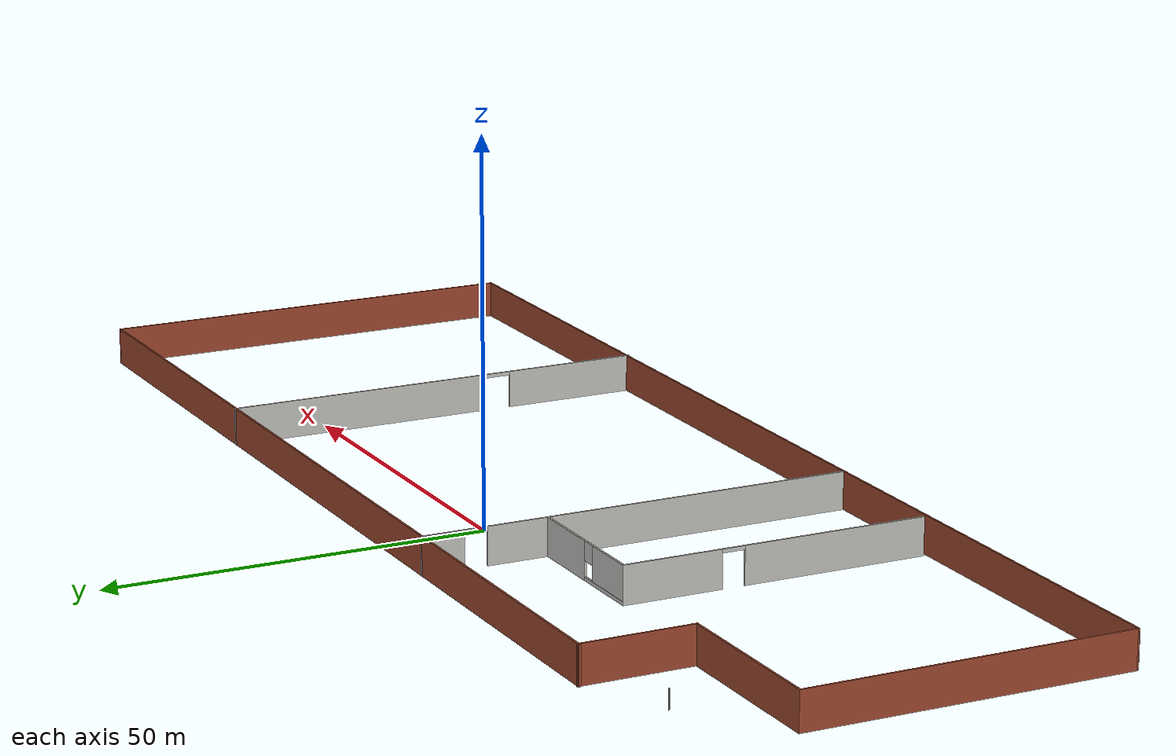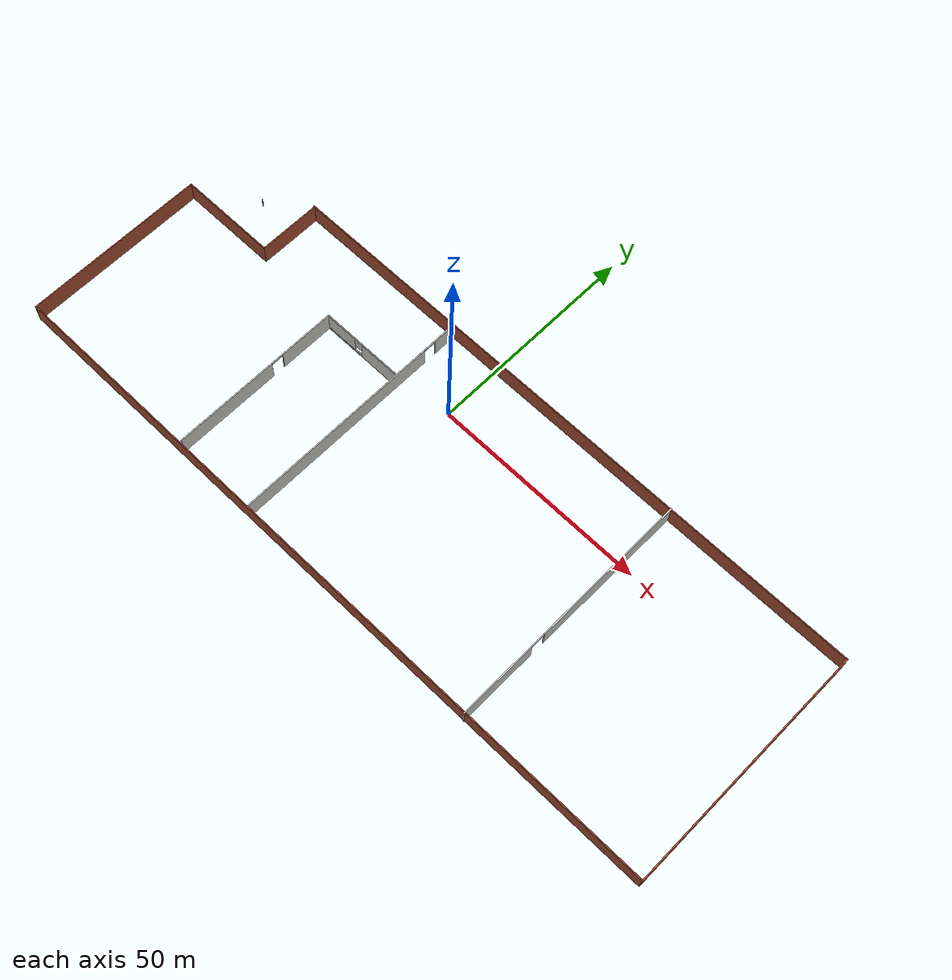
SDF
<?xml version='1.0'?>
<sdf version='1.6'>
  <model name='structure'>
    <pose frame=''>7.15554 -15.125 0 0 -0 0</pose>
    <link name='Wall_15'>
      <collision name='Wall_15_Collision'>
        <geometry>
          <box>
            <size>0.16 0.15 2.5</size>
          </box>
        </geometry>
        <pose frame=''>0 0 1.25 0 -0 0</pose>
      </collision>
      <visual name='Wall_15_Visual'>
        <pose frame=''>0 0 1.25 0 -0 0</pose>
        <geometry>
          <box>
            <size>0.16 0.15 2.5</size>
          </box>
        </geometry>
        <material>
          <script>
            <uri>file://media/materials/scripts/gazebo.material</uri>
            <name>Gazebo/Grey</name>
          </script>
          <ambient>1 1 1 1</ambient>
        </material>
        <meta>
          <layer>0</layer>
        </meta>
      </visual>
      <pose frame=''>-71.5276 23.2908 0 0 -0 0</pose>
    </link>
    <link name='Wall_17'>
      <collision name='Wall_17_Collision'>
        <geometry>
          <box>
            <size>144.984 0.25 5</size>
          </box>
        </geometry>
        <pose frame=''>0 0 2.5 0 -0 0</pose>
      </collision>
      <visual name='Wall_17_Visual'>
        <pose frame=''>0 0 2.5 0 -0 0</pose>
        <geometry>
          <box>
            <size>144.984 0.25 5</size>
          </box>
        </geometry>
        <material>
          <script>
            <uri>file://media/materials/scripts/gazebo.material</uri>
            <name>Gazebo/Bricks</name>
          </script>
          <ambient>0.921569 0.807843 0.615686 1</ambient>
        </material>
        <meta>
          <layer>0</layer>
        </meta>
      </visual>
      <pose frame=''>11.4248 28.9339 0 0 -0 0.0013</pose>
    </link>
    <link name='Wall_20'>
      <collision name='Wall_20_Collision'>
        <geometry>
          <box>
            <size>58.0999 0.25 5</size>
          </box>
        </geometry>
        <pose frame=''>0 0 2.5 0 -0 0</pose>
      </collision>
      <visual name='Wall_20_Visual'>
        <pose frame=''>0 0 2.5 0 -0 0</pose>
        <geometry>
          <box>
            <size>58.0999 0.25 5</size>
          </box>
        </geometry>
        <material>
          <script>
            <uri>file://media/materials/scripts/gazebo.material</uri>
            <name>Gazebo/Bricks</name>
          </script>
          <ambient>1 1 1 1</ambient>
        </material>
        <meta>
          <layer>0</layer>
        </meta>
      </visual>
      <pose frame=''>83.7915 0.103 0 0 0 -1.5708</pose>
    </link>
    <link name='Wall_21'>
      <collision name='Wall_21_Collision'>
        <geometry>
          <box>
            <size>167.833 0.25 5</size>
          </box>
        </geometry>
        <pose frame=''>0 0 2.5 0 -0 0</pose>
      </collision>
      <visual name='Wall_21_Visual'>
        <pose frame=''>0 0 2.5 0 -0 0</pose>
        <geometry>
          <box>
            <size>167.833 0.25 5</size>
          </box>
        </geometry>
        <material>
          <script>
            <uri>file://media/materials/scripts/gazebo.material</uri>
            <name>Gazebo/Bricks</name>
          </script>
          <ambient>0.760784 0.662745 0.627451 1</ambient>
        </material>
        <meta>
          <layer>0</layer>
        </meta>
      </visual>
      <pose frame=''>-4.4e-05 -28.916 0 0 0 -3.14047</pose>
    </link>
    <link name='Wall_22'>
      <collision name='Wall_22_Collision'>
        <geometry>
          <box>
            <size>43.3499 0.25 5</size>
          </box>
        </geometry>
        <pose frame=''>0 0 2.5 0 -0 0</pose>
      </collision>
      <visual name='Wall_22_Visual'>
        <pose frame=''>0 0 2.5 0 -0 0</pose>
        <geometry>
          <box>
            <size>43.3499 0.25 5</size>
          </box>
        </geometry>
        <material>
          <script>
            <uri>file://media/materials/scripts/gazebo.material</uri>
            <name>Gazebo/Bricks</name>
          </script>
          <ambient>1 1 1 1</ambient>
        </material>
        <meta>
          <layer>0</layer>
        </meta>
      </visual>
      <pose frame=''>-83.7915 -7.46 0 0 -0 1.5708</pose>
    </link>
    <link name='Wall_23'>
      <collision name='Wall_23_Collision'>
        <geometry>
          <box>
            <size>23.35 0.25 5</size>
          </box>
        </geometry>
        <pose frame=''>0 0 2.5 0 -0 0</pose>
      </collision>
      <visual name='Wall_23_Visual'>
        <pose frame=''>0 0 2.5 0 -0 0</pose>
        <geometry>
          <box>
            <size>23.35 0.25 5</size>
          </box>
        </geometry>
        <material>
          <script>
            <uri>file://media/materials/scripts/gazebo.material</uri>
            <name>Gazebo/Bricks</name>
          </script>
          <ambient>1 1 1 1</ambient>
        </material>
        <meta>
          <layer>0</layer>
        </meta>
      </visual>
      <pose frame=''>-72.2415 14.09 0 0 -0 0</pose>
    </link>
    <link name='Wall_24'>
      <collision name='Wall_24_Collision'>
        <geometry>
          <box>
            <size>15.0999 0.25 5</size>
          </box>
        </geometry>
        <pose frame=''>0 0 2.5 0 -0 0</pose>
      </collision>
      <visual name='Wall_24_Visual'>
        <pose frame=''>0 0 2.5 0 -0 0</pose>
        <geometry>
          <box>
            <size>15.0999 0.25 5</size>
          </box>
        </geometry>
        <material>
          <script>
            <uri>file://media/materials/scripts/gazebo.material</uri>
            <name>Gazebo/Bricks</name>
          </script>
          <ambient>1 1 1 1</ambient>
        </material>
        <meta>
          <layer>0</layer>
        </meta>
      </visual>
      <pose frame=''>-60.6915 21.515 0 0 -0 1.5708</pose>
    </link>
    <link name='Wall_27'>
      <pose frame=''>-19.2795 0.13 0 0 -0 1.5708</pose>
      <visual name='Wall_27_Visual_0'>
        <pose frame=''>-4.33599 0 2.5 0 -0 0</pose>
        <geometry>
          <box>
            <size>49.1778 0.25 5</size>
          </box>
        </geometry>
        <material>
          <script>
            <uri>file://media/materials/scripts/gazebo.material</uri>
            <name>Gazebo/CeilingTiled</name>
          </script>
          <ambient>1 1 1 1</ambient>
        </material>
        <meta>
          <layer>0</layer>
        </meta>
      </visual>
      <collision name='Wall_27_Collision_0'>
        <geometry>
          <box>
            <size>49.1778 0.25 5</size>
          </box>
        </geometry>
        <pose frame=''>-4.33599 0 2.5 0 -0 0</pose>
      </collision>
      <visual name='Wall_27_Visual_1'>
        <pose frame=''>26.0889 0 2.5 0 -0 0</pose>
        <geometry>
          <box>
            <size>5.67198 0.25 5</size>
          </box>
        </geometry>
        <material>
          <script>
            <uri>file://media/materials/scripts/gazebo.material</uri>
            <name>Gazebo/CeilingTiled</name>
          </script>
          <ambient>1 1 1 1</ambient>
        </material>
        <meta>
          <layer>0</layer>
        </meta>
      </visual>
      <collision name='Wall_27_Collision_1'>
        <geometry>
          <box>
            <size>5.67198 0.25 5</size>
          </box>
        </geometry>
        <pose frame=''>26.0889 0 2.5 0 -0 0</pose>
      </collision>
      <visual name='Wall_27_Visual_2'>
        <pose frame=''>21.7529 0 4.75 0 -0 0</pose>
        <geometry>
          <box>
            <size>3 0.25 0.5</size>
          </box>
        </geometry>
        <material>
          <script>
            <uri>file://media/materials/scripts/gazebo.material</uri>
            <name>Gazebo/CeilingTiled</name>
          </script>
          <ambient>1 1 1 1</ambient>
        </material>
        <meta>
          <layer>0</layer>
        </meta>
      </visual>
      <collision name='Wall_27_Collision_2'>
        <geometry>
          <box>
            <size>3 0.25 0.5</size>
          </box>
        </geometry>
        <pose frame=''>21.7529 0 4.75 0 -0 0</pose>
      </collision>
    </link>
    <link name='Wall_30'>
      <pose frame=''>-29.2825 12.267 0 0 -0 3.14159</pose>
      <visual name='Wall_30_Visual_0'>
        <pose frame=''>-5.01045 0 2.5 0 -0 0</pose>
        <geometry>
          <box>
            <size>10.0787 0.25 5</size>
          </box>
        </geometry>
        <material>
          <script>
            <uri>file://media/materials/scripts/gazebo.material</uri>
            <name>Gazebo/CeilingTiled</name>
          </script>
          <ambient>0.996078 0.47451 0.0196078 1</ambient>
        </material>
        <meta>
          <layer>0</layer>
        </meta>
      </visual>
      <collision name='Wall_30_Collision_0'>
        <geometry>
          <box>
            <size>10.0787 0.25 5</size>
          </box>
        </geometry>
        <pose frame=''>-5.01045 0 2.5 0 -0 0</pose>
      </collision>
      <visual name='Wall_30_Visual_1'>
        <pose frame=''>5.03936 0 0.25 0 -0 0</pose>
        <geometry>
          <box>
            <size>10.0209 0.25 0.5</size>
          </box>
        </geometry>
        <material>
          <script>
            <uri>file://media/materials/scripts/gazebo.material</uri>
            <name>Gazebo/CeilingTiled</name>
          </script>
          <ambient>0.996078 0.47451 0.0196078 1</ambient>
        </material>
        <meta>
          <layer>0</layer>
        </meta>
      </visual>
      <collision name='Wall_30_Collision_1'>
        <geometry>
          <box>
            <size>10.0209 0.25 0.5</size>
          </box>
        </geometry>
        <pose frame=''>5.03936 0 0.25 0 -0 0</pose>
      </collision>
      <visual name='Wall_30_Visual_2'>
        <pose frame=''>6.03936 0 2.75 0 -0 0</pose>
        <geometry>
          <box>
            <size>8.0209 0.25 4.5</size>
          </box>
        </geometry>
        <material>
          <script>
            <uri>file://media/materials/scripts/gazebo.material</uri>
            <name>Gazebo/CeilingTiled</name>
          </script>
          <ambient>0.996078 0.47451 0.0196078 1</ambient>
        </material>
        <meta>
          <layer>0</layer>
        </meta>
      </visual>
      <collision name='Wall_30_Collision_2'>
        <geometry>
          <box>
            <size>8.0209 0.25 4.5</size>
          </box>
        </geometry>
        <pose frame=''>6.03936 0 2.75 0 -0 0</pose>
      </collision>
      <visual name='Wall_30_Visual_3'>
        <pose frame=''>1.02891 0 3.75 0 -0 0</pose>
        <geometry>
          <box>
            <size>2 0.25 2.5</size>
          </box>
        </geometry>
        <material>
          <script>
            <uri>file://media/materials/scripts/gazebo.material</uri>
            <name>Gazebo/CeilingTiled</name>
          </script>
          <ambient>0.996078 0.47451 0.0196078 1</ambient>
        </material>
        <meta>
          <layer>0</layer>
        </meta>
      </visual>
      <collision name='Wall_30_Collision_3'>
        <geometry>
          <box>
            <size>2 0.25 2.5</size>
          </box>
        </geometry>
        <pose frame=''>1.02891 0 3.75 0 -0 0</pose>
      </collision>
    </link>
    <link name='Wall_31'>
      <pose frame=''>-39.2075 -8.033 0 0 0 -1.5708</pose>
      <visual name='Wall_31_Visual_0'>
        <pose frame=''>-13.8364 0 2.5 0 -0 0</pose>
        <geometry>
          <box>
            <size>13.1772 0.25 5</size>
          </box>
        </geometry>
        <material>
          <script>
            <uri>file://media/materials/scripts/gazebo.material</uri>
            <name>Gazebo/CeilingTiled</name>
          </script>
          <ambient>1 1 1 1</ambient>
        </material>
        <meta>
          <layer>0</layer>
        </meta>
      </visual>
      <collision name='Wall_31_Collision_0'>
        <geometry>
          <box>
            <size>13.1772 0.25 5</size>
          </box>
        </geometry>
        <pose frame=''>-13.8364 0 2.5 0 -0 0</pose>
      </collision>
      <visual name='Wall_31_Visual_1'>
        <pose frame=''>8.08861 0 2.5 0 -0 0</pose>
        <geometry>
          <box>
            <size>24.6728 0.25 5</size>
          </box>
        </geometry>
        <material>
          <script>
            <uri>file://media/materials/scripts/gazebo.material</uri>
            <name>Gazebo/CeilingTiled</name>
          </script>
          <ambient>1 1 1 1</ambient>
        </material>
        <meta>
          <layer>0</layer>
        </meta>
      </visual>
      <collision name='Wall_31_Collision_1'>
        <geometry>
          <box>
            <size>24.6728 0.25 5</size>
          </box>
        </geometry>
        <pose frame=''>8.08861 0 2.5 0 -0 0</pose>
      </collision>
      <visual name='Wall_31_Visual_2'>
        <pose frame=''>-5.74777 0 4.75 0 -0 0</pose>
        <geometry>
          <box>
            <size>3 0.25 0.5</size>
          </box>
        </geometry>
        <material>
          <script>
            <uri>file://media/materials/scripts/gazebo.material</uri>
            <name>Gazebo/CeilingTiled</name>
          </script>
          <ambient>1 1 1 1</ambient>
        </material>
        <meta>
          <layer>0</layer>
        </meta>
      </visual>
      <collision name='Wall_31_Collision_2'>
        <geometry>
          <box>
            <size>3 0.25 0.5</size>
          </box>
        </geometry>
        <pose frame=''>-5.74777 0 4.75 0 -0 0</pose>
      </collision>
    </link>
    <link name='Wall_33'>
      <collision name='Wall_33_Collision'>
        <geometry>
          <box>
            <size>0.16 0.15 2.5</size>
          </box>
        </geometry>
        <pose frame=''>0 0 1.25 0 -0 0</pose>
      </collision>
      <visual name='Wall_33_Visual'>
        <pose frame=''>0 0 1.25 0 -0 0</pose>
        <geometry>
          <box>
            <size>0.16 0.15 2.5</size>
          </box>
        </geometry>
        <material>
          <script>
            <uri>file://media/materials/scripts/gazebo.material</uri>
            <name>Gazebo/Grey</name>
          </script>
          <ambient>1 1 1 1</ambient>
        </material>
        <meta>
          <layer>0</layer>
        </meta>
      </visual>
      <pose frame=''>39.9896 29.0502 0 0 0 -0.042065</pose>
    </link>
    <link name='Wall_34'>
      <pose frame=''>39.9945 0 0 0 0 -1.5708</pose>
      <visual name='Wall_34_Visual_0'>
        <pose frame=''>-10.9231 0 2.5 0 -0 0</pose>
        <geometry>
          <box>
            <size>36.5034 0.25 5</size>
          </box>
        </geometry>
        <material>
          <script>
            <uri>file://media/materials/scripts/gazebo.material</uri>
            <name>Gazebo/CeilingTiled</name>
          </script>
          <ambient>0.921569 0.807843 0.615686 1</ambient>
        </material>
        <meta>
          <layer>0</layer>
        </meta>
      </visual>
      <collision name='Wall_34_Collision_0'>
        <geometry>
          <box>
            <size>36.5034 0.25 5</size>
          </box>
        </geometry>
        <pose frame=''>-10.9231 0 2.5 0 -0 0</pose>
      </collision>
      <visual name='Wall_34_Visual_1'>
        <pose frame=''>20.0017 0 2.5 0 -0 0</pose>
        <geometry>
          <box>
            <size>18.3462 0.25 5</size>
          </box>
        </geometry>
        <material>
          <script>
            <uri>file://media/materials/scripts/gazebo.material</uri>
            <name>Gazebo/CeilingTiled</name>
          </script>
          <ambient>0.921569 0.807843 0.615686 1</ambient>
        </material>
        <meta>
          <layer>0</layer>
        </meta>
      </visual>
      <collision name='Wall_34_Collision_1'>
        <geometry>
          <box>
            <size>18.3462 0.25 5</size>
          </box>
        </geometry>
        <pose frame=''>20.0017 0 2.5 0 -0 0</pose>
      </collision>
      <visual name='Wall_34_Visual_2'>
        <pose frame=''>9.07864 0 4.75 0 -0 0</pose>
        <geometry>
          <box>
            <size>3.5 0.25 0.5</size>
          </box>
        </geometry>
        <material>
          <script>
            <uri>file://media/materials/scripts/gazebo.material</uri>
            <name>Gazebo/CeilingTiled</name>
          </script>
          <ambient>0.921569 0.807843 0.615686 1</ambient>
        </material>
        <meta>
          <layer>0</layer>
        </meta>
      </visual>
      <collision name='Wall_34_Collision_2'>
        <geometry>
          <box>
            <size>3.5 0.25 0.5</size>
          </box>
        </geometry>
        <pose frame=''>9.07864 0 4.75 0 -0 0</pose>
      </collision>
    </link>
    <static>1</static>
  </model>
</sdf>
